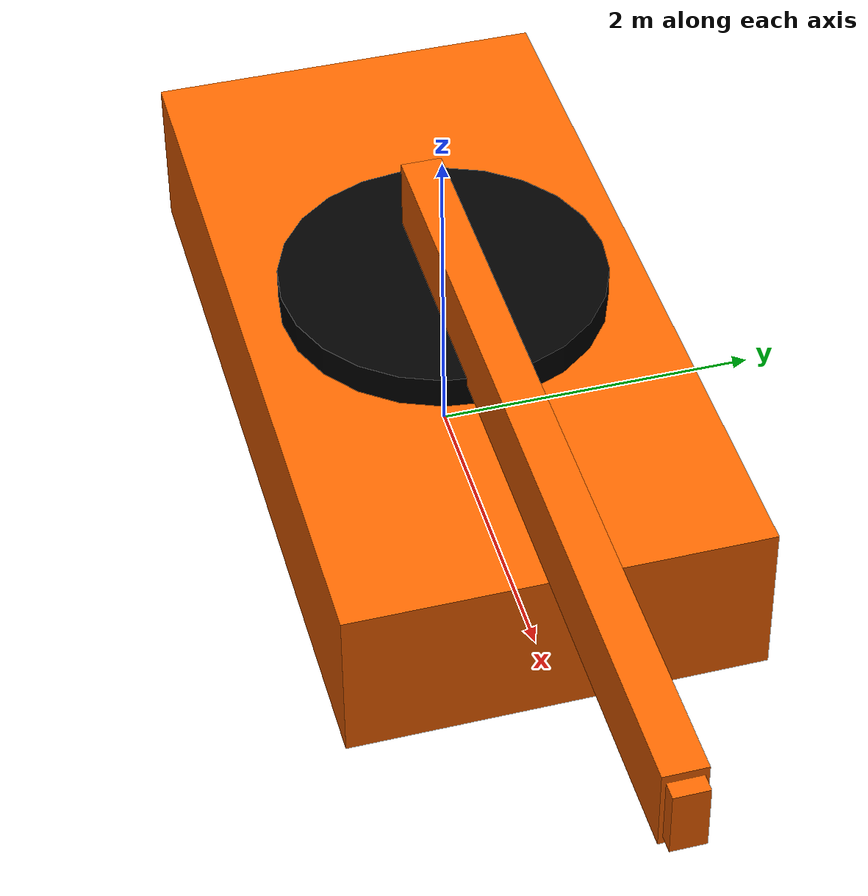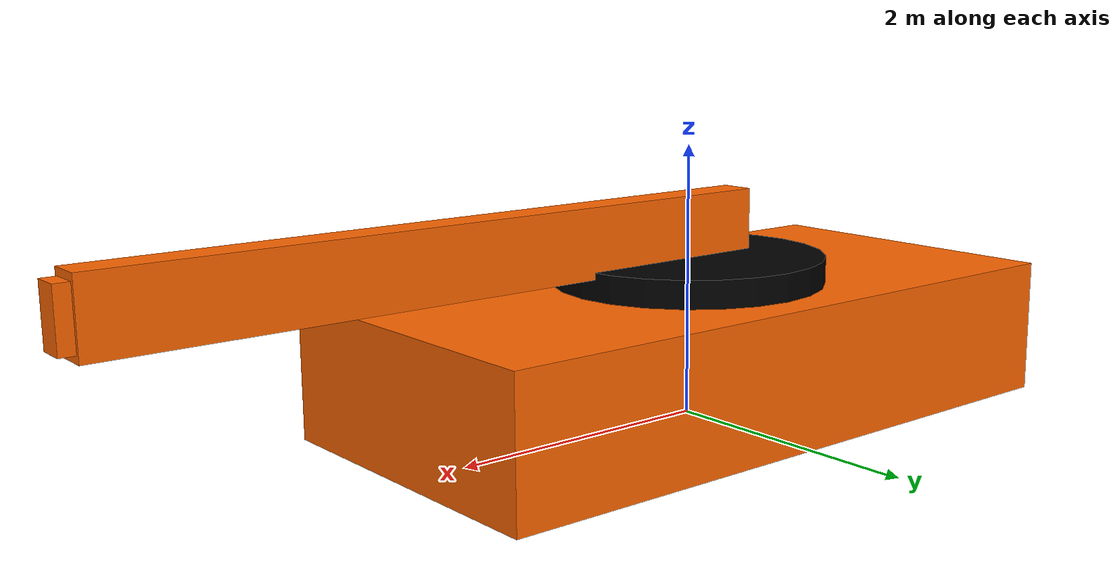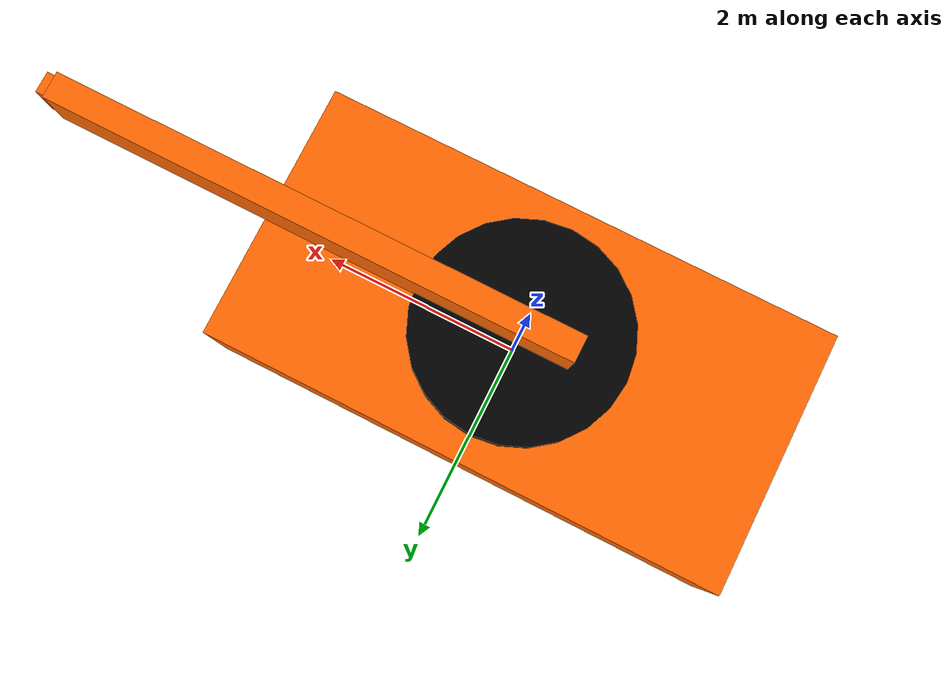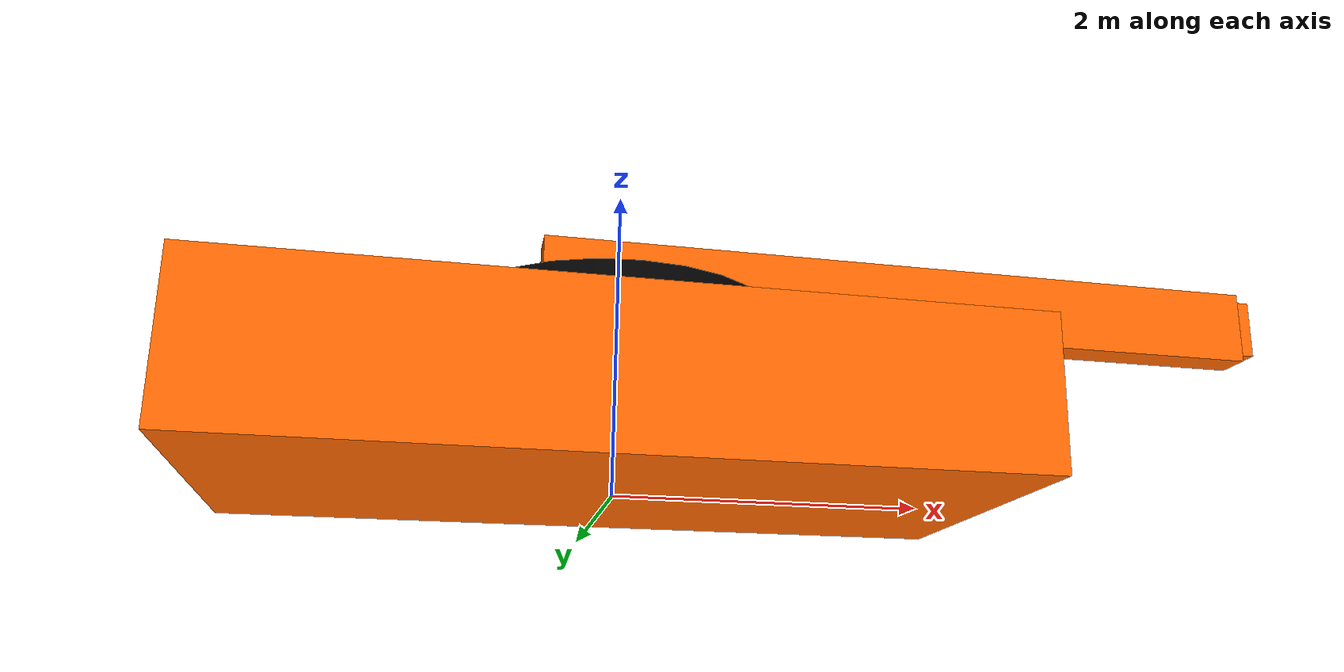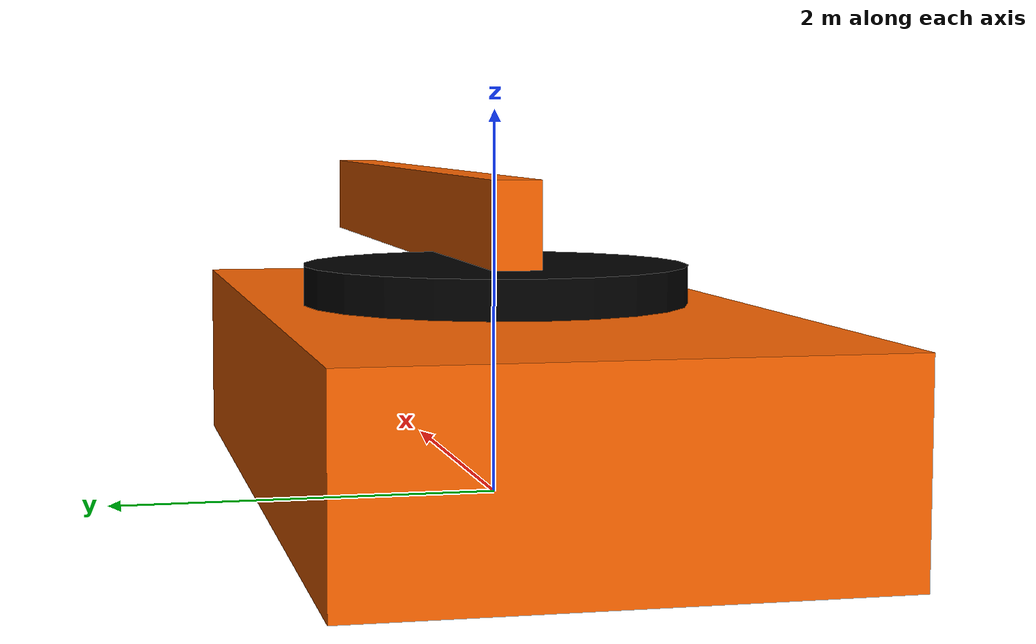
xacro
<?xml version="1.0" ?>
<robot name="testbot" xmlns:xacro="http://www.ros.org/wiki/xacro">

  <xacro:include filename="$(find uasl_crane_description)/urdf/testbot.gazebo" />

  <material name="black">
    <color rgba="0.0 0.0 0.0 1.0"/>
  </material>
  <material name="orange">
    <color rgba="1.0 0.4 0.0 1.0"/>
  </material>

  <link name="base"/>

  <joint name="fixed" type="fixed">
    <parent link="base"/>
    <child link="link1"/>
  </joint>

  <link name="link1">
    <collision>
      <origin xyz="0 0 0.5" rpy="0 0 0"/>
      <geometry>
        <box size="5 2.5 1"/>
      </geometry>
    </collision>
    <visual>
      <origin xyz="0 0 0.5" rpy="0 0 0"/>
      <geometry>
        <box size="5 2.5 1"/>
      </geometry>
      <material name="orange"/>
    </visual>
    <inertial>
      <origin xyz="0 0 0.25" rpy="0 0 0"/>
      <mass value="1"/>
      <inertia ixx="1.0" ixy="0.0" ixz="0.0" iyy="1.0" iyz="0.0" izz="1.0"/>
    </inertial>
  </link>

  <joint name="joint1" type="revolute">
    <parent link="link1"/>
    <child link="link2"/>
    <origin xyz="0 0 1" rpy="0 0 0"/>
    <axis xyz="0 0 1"/>
    <limit effort="30" lower="-3.14" upper="3.14" velocity="1.571"/>
  </joint>

  <link name="link2">
    <collision>
      <origin xyz="0 0 0.1" rpy="0 0 0"/>
      <geometry>
	<cylinder radius="1" length="0.2"/>
      </geometry>
    </collision>
    <visual>
      <origin xyz="0 0 0.1" rpy="0 0 0"/>
      <geometry>
        <cylinder radius="1" length="0.2"/>
      </geometry>
      <material name="black"/>
    </visual>
    <inertial>
      <origin xyz="0 0 0.25" rpy="0 0 0"/>
      <mass value="1"/>
      <inertia ixx="1.0" ixy="0.0" ixz="0.0" iyy="1.0" iyz="0.0" izz="1.0"/>
    </inertial>
  </link>

  <joint name="joint2" type="revolute">
    <parent link="link2"/>
    <child link="link3"/>
    <origin xyz="0 0 0.5" rpy="0 0 0"/>
    <axis xyz="0 -1 0"/>
    <limit effort="30" lower="0" upper="1.5" velocity="1.571"/>
  </joint>

  <link name="link3">
    <collision>
      <origin xyz="2 0 -0.1" rpy="0 0 0"/>
      <geometry>
        <box size="5 0.25 0.5"/>
      </geometry>
    </collision>
    <visual>
      <origin xyz="2 0 -0.1" rpy="0 0 0"/>
      <geometry>
        <box size="5 0.25 0.5"/>
      </geometry>
      <material name="orange"/>
    </visual>
    <inertial>
      <origin xyz="0 0 0.5" rpy="0 0 0"/>
      <mass value="1"/>
      <inertia ixx="1.0" ixy="0.0" ixz="0.0" iyy="1.0" iyz="0.0" izz="1.0"/>
    </inertial>
  </link>

  <joint name="joint3" type="prismatic">
    <parent link="link3"/>
    <child link="link4"/>
    <origin xyz="0 0 1.0" rpy="0 0 0"/>
    <axis xyz="1 0 0"/>
    <limit effort="30" lower="0" upper="3.5" velocity="1.571"/>
  </joint>

  <link name="link4">
    <collision>
      <origin xyz="2.6 0 -1.1" rpy="0 0 0"/>
      <geometry>
        <box size="4 0.2 0.4"/>
      </geometry>
    </collision>
    <visual>
      <origin xyz="2.6 0 -1.1" rpy="0 0 0"/>
      <geometry>
        <box size="4 0.2 0.4"/>
      </geometry>
      <material name="orange"/>
    </visual>
    <inertial>
      <origin xyz="0 0 0.25" rpy="0 0 0"/>
      <mass value="1"/>
      <inertia ixx="1.0" ixy="0.0" ixz="0.0" iyy="1.0" iyz="0.0" izz="1.0"/>
    </inertial>
  </link>

  <transmission name="tran1">
    <type>transmission_interface/SimpleTransmission</type>
    <joint name="joint1">
      <hardwareInterface>hardware_interface/EffortJointInterface</hardwareInterface>
    </joint>
    <actuator name="motor1">
      <hardwareInterface>hardware_interface/EffortJointInterface</hardwareInterface>
      <mechanicalReduction>1</mechanicalReduction>
    </actuator>
  </transmission>

  <transmission name="tran2">
    <type>transmission_interface/SimpleTransmission</type>
    <joint name="joint2">
      <hardwareInterface>hardware_interface/EffortJointInterface</hardwareInterface>
    </joint>
    <actuator name="motor2">
      <hardwareInterface>hardware_interface/EffortJointInterface</hardwareInterface>
      <mechanicalReduction>1</mechanicalReduction>
    </actuator>
  </transmission>

  <transmission name="tran3">
    <type>transmission_interface/SimpleTransmission</type>
    <joint name="joint3">
      <hardwareInterface>hardware_interface/EffortJointInterface</hardwareInterface>
    </joint>
    <actuator name="motor3">
      <hardwareInterface>hardware_interface/EffortJointInterface</hardwareInterface>
      <mechanicalReduction>1</mechanicalReduction>
    </actuator>
  </transmission>

</robot>
